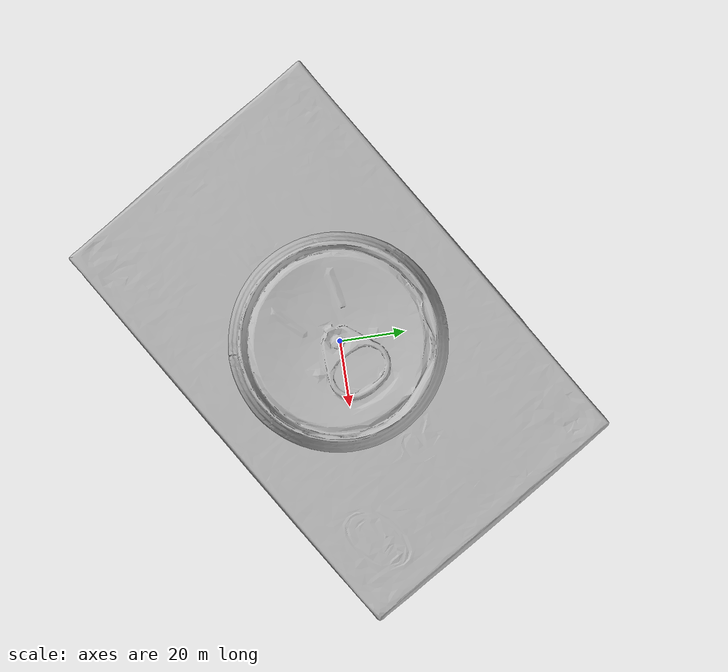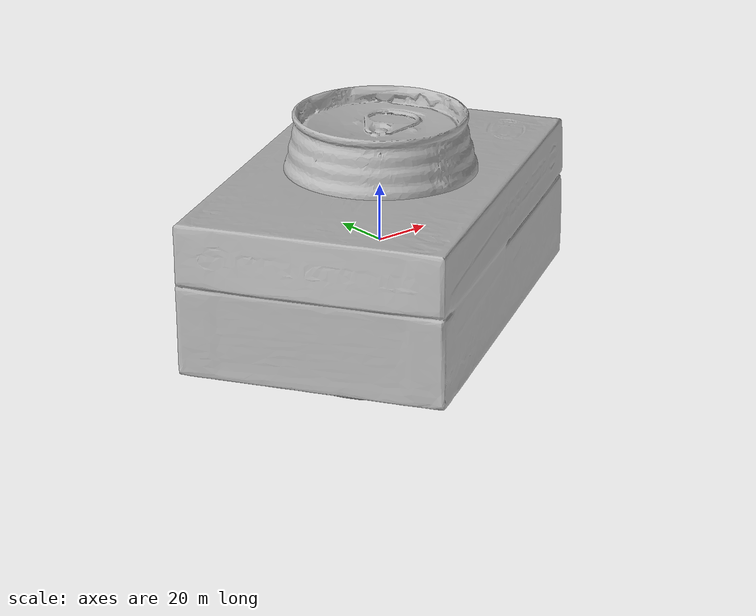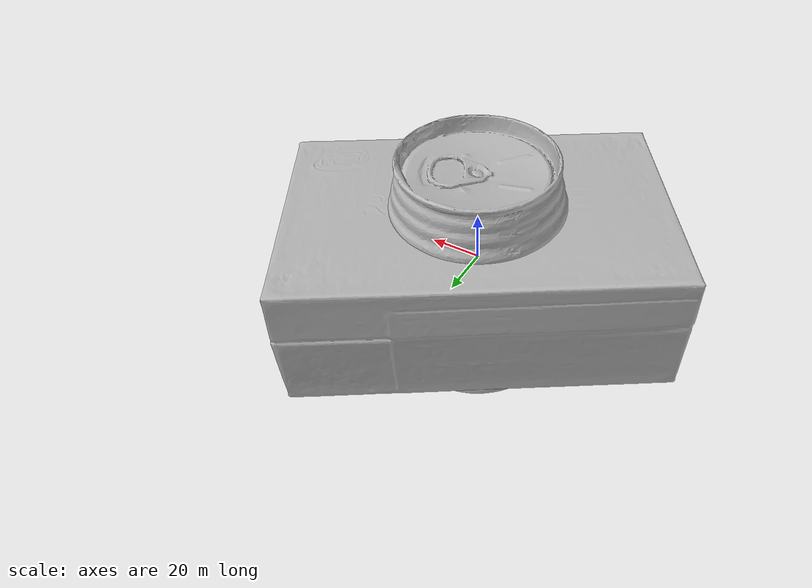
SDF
<?xml version="1.0" ?>
<sdf version="1.4">
  <world name="default">
    <light name="light1" type="point">
      <pose>0 0 1 0 0 0</pose>
      <diffuse>3 3 3 1</diffuse>
      <specular>3 3 3 1</specular>
    </light>
    <light name="light2" type="point">
      <pose>0 0.5 2 0 0 0</pose>
      <diffuse>1 1 1 1</diffuse>
      <specular>1 1 1 1</specular>
    </light>
    <light name="light3" type="point">
      <pose>0 0.5 2 0 0 0</pose>
      <diffuse>3 3 3 1</diffuse>
      <specular>3 3 3 1</specular>
    </light>
    <scene>
      <ambient>0.7 0.7 0.7</ambient>
    </scene>
    <model name="box1">
      <link name="link_box1">
        <collision name="default">
          <geometry>
            <mesh>
              <uri>model://realsense_box/collision_meshes/collision.obj</uri>
              <scale>1.0 1.0 1.0</scale>
            </mesh>
          </geometry>
          <surface>
            <friction>
              <ode>
                <mu>0.5</mu>
                <mu2>0.5</mu2>
              </ode>
            </friction>
            <contact>
              <ode>
                <max_vel>0</max_vel>
                <min_depth>0.0001</min_depth>
                <kp>1e8</kp>
              </ode>
            </contact>
          </surface>
        </collision>
        <visual name="default">
          <geometry>
            <mesh>
              <uri>model://realsense_box/visual_meshes/visual.dae</uri>
              <scale>1.0 1.0 1.0</scale>
            </mesh>
          </geometry>
        </visual>
        <inertial>
          <mass>0.5864310264587402</mass>
          <pose>4.0744838770478964e-05 8.587492629885674e-05 -2.4153792764991522e-05 -0.00012602841398420584 -0.00635893997803049 0.005012323893530406</pose>
          <inertia>
            <ixx>0.00055784633</ixx>
            <iyy>0.0011643406</iyy>
            <izz>0.0014403972</izz>
            <ixy>0</ixy>
            <ixz>0</ixz>
            <iyz>0</iyz>
          </inertia>
        </inertial>
      </link>
      <pose>0.013256010599434376 -0.10585618019104004 0.026869747787714005 0.0005414024315074675 0.006825556306007535 -2.5993657152425502</pose>
    </model>
    <model name="box2">
      <link name="link_box2">
        <collision name="default">
          <geometry>
            <mesh>
              <uri>model://wooden_puzzle1/collision_meshes/collision.obj</uri>
              <scale>1.0 1.0 1.0</scale>
            </mesh>
          </geometry>
          <surface>
            <friction>
              <ode>
                <mu>0.5</mu>
                <mu2>0.5</mu2>
              </ode>
            </friction>
            <contact>
              <ode>
                <max_vel>0</max_vel>
                <min_depth>0.0001</min_depth>
                <kp>1e8</kp>
              </ode>
            </contact>
          </surface>
        </collision>
        <visual name="default">
          <geometry>
            <mesh>
              <uri>model://wooden_puzzle1/visual_meshes/visual.dae</uri>
              <scale>1.0 1.0 1.0</scale>
            </mesh>
          </geometry>
        </visual>
        <inertial>
          <mass>0.029293930158019066</mass>
          <pose>-0.00017350679263472557 7.972260209498927e-05 -9.191554272547364e-05 -0.07784356807478612 -0.26361316070226715 -0.552870069934309</pose>
          <inertia>
            <ixx>5.5269634e-06</ixx>
            <iyy>5.4205675e-06</iyy>
            <izz>5.4852344e-06</izz>
            <ixy>0</ixy>
            <ixz>0</ixz>
            <iyz>0</iyz>
          </inertia>
        </inertial>
      </link>
      <pose>0.22544682025909424 -0.2942294478416443 0.016802014783024788 0.010511508462602683 -0.009453612595833634 2.387341333394028</pose>
    </model>
    <model name="box3">
      <link name="link_box3">
        <collision name="default">
          <geometry>
            <mesh>
              <uri>model://wooden_puzzle2/collision_meshes/collision.obj</uri>
              <scale>1.0 1.0 1.0</scale>
            </mesh>
          </geometry>
          <surface>
            <friction>
              <ode>
                <mu>0.5</mu>
                <mu2>0.5</mu2>
              </ode>
            </friction>
            <contact>
              <ode>
                <max_vel>0</max_vel>
                <min_depth>0.0001</min_depth>
                <kp>1e8</kp>
              </ode>
            </contact>
          </surface>
        </collision>
        <visual name="default">
          <geometry>
            <mesh>
              <uri>model://wooden_puzzle2/visual_meshes/visual.dae</uri>
              <scale>1.0 1.0 1.0</scale>
            </mesh>
          </geometry>
        </visual>
        <inertial>
          <mass>0.046210821717977524</mass>
          <pose>2.7402538762544282e-05 4.9976635636994615e-05 6.587122334167361e-05 -0.19202726218652877 0.6112834530151037 -0.6338736448019666</pose>
          <inertia>
            <ixx>8.590097e-06</ixx>
            <iyy>8.826809e-06</iyy>
            <izz>8.7012395e-06</izz>
            <ixy>0</ixy>
            <ixz>0</ixz>
            <iyz>0</iyz>
          </inertia>
        </inertial>
      </link>
      <pose>0.2785848379135132 -0.38317903876304626 0.016917739063501358 0.020847699224444405 0.0007220440877183499 0.04517305648940728</pose>
    </model>
    <model name="can1">
      <link name="link_can1">
        <collision name="default">
          <geometry>
            <mesh>
              <uri>model://pepsi/collision_meshes/collision.obj</uri>
              <scale>1.0 1.0 1.0</scale>
            </mesh>
          </geometry>
          <surface>
            <friction>
              <ode>
                <mu>0.5</mu>
                <mu2>0.5</mu2>
              </ode>
            </friction>
            <contact>
              <ode>
                <max_vel>0</max_vel>
                <min_depth>0.0001</min_depth>
                <kp>1e8</kp>
              </ode>
            </contact>
          </surface>
        </collision>
        <visual name="default">
          <geometry>
            <mesh>
              <uri>model://pepsi/visual_meshes/visual.dae</uri>
              <scale>1.0 1.0 1.0</scale>
            </mesh>
          </geometry>
        </visual>
        <inertial>
          <mass>0.38708412647247314</mass>
          <pose>-7.5590331107378e-05 2.9931279641459696e-05 -0.0003384356386959553 -0.0010677624110939459 -0.0021735778616849013 0.5673701652335379</pose>
          <inertia>
            <ixx>0.00077114574</ixx>
            <iyy>0.0007705839</iyy>
            <izz>0.00016412749</izz>
            <ixy>0</ixy>
            <ixz>0</ixz>
            <iyz>0</iyz>
          </inertia>
        </inertial>
      </link>
      <pose>-0.05746277794241905 -0.06055731326341629 0.07449620962142944 -1.2927100868778423e-05 -7.484108951506827e-06 2.041680435494633</pose>
    </model>
    <model name="can2">
      <link name="link_can2">
        <collision name="default">
          <geometry>
            <mesh>
              <uri>model://redbull/collision_meshes/collision.obj</uri>
              <scale>1.0 1.0 1.0</scale>
            </mesh>
          </geometry>
          <surface>
            <friction>
              <ode>
                <mu>0.5</mu>
                <mu2>0.5</mu2>
              </ode>
            </friction>
            <contact>
              <ode>
                <max_vel>0</max_vel>
                <min_depth>0.0001</min_depth>
                <kp>1e8</kp>
              </ode>
            </contact>
          </surface>
        </collision>
        <visual name="default">
          <geometry>
            <mesh>
              <uri>model://redbull/visual_meshes/visual.dae</uri>
              <scale>1.0 1.0 1.0</scale>
            </mesh>
          </geometry>
        </visual>
        <inertial>
          <mass>0.22841571271419525</mass>
          <pose>-2.2126563635538332e-05 -0.00012659550702665 -0.0006860988214612007 0.001137008533125708 -0.010800935482360328 0.5858832407094048</pose>
          <inertia>
            <ixx>0.00021475992</ixx>
            <iyy>0.00021494119</iyy>
            <izz>0.00012744407</izz>
            <ixy>0</ixy>
            <ixz>0</ixz>
            <iyz>0</iyz>
          </inertia>
        </inertial>
      </link>
      <pose>-0.06665787100791931 -0.36642566323280334 0.04638564959168434 -0.010489638260038738 0.00726063336615947 2.4588156621383193</pose>
    </model>
    <physics type="ode">
      <max_contacts>50</max_contacts>
      <ode>
        <solver>
          <type>quick</type>
          <iters>75</iters>
        </solver>
        <constraints>
          <contact_max_correcting_vel>0</contact_max_correcting_vel>
          <contact_surface_layer>0</contact_surface_layer>
        </constraints>
      </ode>
    </physics>
  </world>
</sdf>
